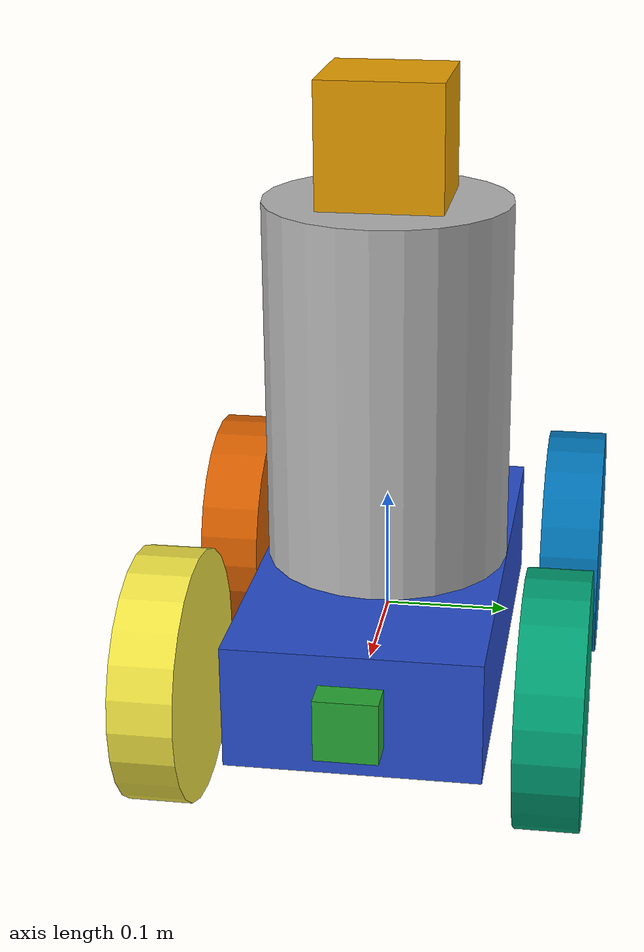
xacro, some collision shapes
<?xml version='1.0'?>

<robot name="udacity_bot" xmlns:xacro="http://www.ros.org/wiki/xacro">

  <xacro:include filename="$(find udacity_bot)/urdf/map_bot.gazebo" />

  <link name="robot_footprint"></link>

  <joint name="robot_footprint_joint" type="fixed">
    <origin xyz="0 0 0" rpy="0 0 0" />
    <parent link="robot_footprint"/>
    <child link="chassis" />
  </joint>

  <link name='chassis'>
    <pose>0 0 0.1 0 0 0</pose>

    <inertial>
      <mass value="15.0"/>
      <origin xyz="0.0 0 0" rpy="0 0 0"/>
      <inertia
          ixx="0.1" ixy="0" ixz="0"
          iyy="0.1" iyz="0"
          izz="0.1"
      />
    </inertial>

    <collision name='collision'>
      <origin xyz="0 0 0" rpy="0 0 0"/>
      <geometry>
        <box size=".4 .2 .1"/>
      </geometry>
    </collision>

    <visual name='chassis_visual'>
      <origin xyz="0 0 0" rpy="0 0 0"/>
      <geometry>
        <box size=".4 .2 .1"/>
      </geometry>
      <material name='blue'/>
    </visual>

    <collision name='back_caster_collision'>
      <origin xyz="-0.15 0 -0.05" rpy="0 0 0"/>
      <geometry>
        <sphere radius="0.0499"/>
      </geometry>
    </collision>

    <visual name='back_caster_visual'>
      <origin xyz="-0.15 0 -0.05" rpy="0 0 0"/>
      <geometry>
        <sphere radius="0.05"/>
      </geometry>
    </visual>

  </link>

  <joint type="continuous" name="front_left_wheel_hinge">
    <origin xyz="0.15 0.15 0" rpy="0 0 0"/>
    <child link="front_left_wheel"/>
    <parent link="chassis"/>
    <axis xyz="0 1 0" rpy="0 0 0"/>
    <limit effort="10000" velocity="1000"/>
    <dynamics damping="1.0" friction="1.0"/>
  </joint>

  <joint type="continuous" name="front_right_wheel_hinge">
    <origin xyz="0.15 -0.15 0" rpy="0 0 0"/>
    <child link="front_right_wheel"/>
    <parent link="chassis"/>
    <axis xyz="0 1 0" rpy="0 0 0"/>
    <limit effort="10000" velocity="1000"/>
    <dynamics damping="1.0" friction="1.0"/>
  </joint>

  <joint type="continuous" name="rear_left_wheel_hinge">
    <origin xyz="-0.15 0.15 0" rpy="0 0 0"/>
    <child link="rear_left_wheel"/>
    <parent link="chassis"/>
    <axis xyz="0 1 0" rpy="0 0 0"/>
    <limit effort="10000" velocity="1000"/>
    <dynamics damping="1.0" friction="1.0"/>
  </joint>

  <joint type="continuous" name="rear_right_wheel_hinge">
    <origin xyz="-0.15 -0.15 0" rpy="0 0 0"/>
    <child link="rear_right_wheel"/>
    <parent link="chassis"/>
    <axis xyz="0 1 0" rpy="0 0 0"/>
    <limit effort="10000" velocity="1000"/>
    <dynamics damping="1.0" friction="1.0"/>
  </joint>

  <link name="front_left_wheel">
    <visual>
      <origin xyz="0 0 0" rpy="0 1.5707 1.5707"/>
      <geometry>
        <cylinder radius="0.1" length="0.05"/>
      </geometry>
    </visual>

    <collision>
      <origin xyz="0 0 0" rpy="0 1.5707 1.5707"/>
      <geometry>
        <cylinder radius="0.1" length="0.05"/>
      </geometry>
    </collision>

    <inertial>
      <origin xyz="0 0 0" rpy="0 1.5707 1.5707"/>
      <mass value="5"/>
      <inertia
          ixx="0.1" ixy="0" ixz="0"
          iyy="0.1" iyz="0"
          izz="0.1"
      />
    </inertial>
  </link>

  <link name="front_right_wheel">
    <visual>
      <origin xyz="0 0 0" rpy="0 1.5707 1.5707"/>
      <geometry>
        <cylinder radius="0.1" length="0.05"/>
      </geometry>
    </visual>

    <collision>
      <origin xyz="0 0 0" rpy="0 1.5707 1.5707"/>
      <geometry>
        <cylinder radius="0.1" length="0.05"/>
      </geometry>
    </collision>

    <inertial>
      <origin xyz="0 0 0" rpy="0 1.5707 1.5707"/>
      <mass value="5"/>
      <inertia
          ixx="0.1" ixy="0" ixz="0"
          iyy="0.1" iyz="0"
          izz="0.1"
      />
    </inertial>
  </link>

  <link name="rear_left_wheel">
    <visual>
      <origin xyz="0 0 0" rpy="0 1.5707 1.5707"/>
      <geometry>
        <cylinder radius="0.1" length="0.05"/>
      </geometry>
    </visual>

    <collision>
      <origin xyz="0 0 0" rpy="0 1.5707 1.5707"/>
      <geometry>
        <cylinder radius="0.1" length="0.05"/>
      </geometry>
    </collision>

    <inertial>
      <origin xyz="0 0 0" rpy="0 1.5707 1.5707"/>
      <mass value="5"/>
      <inertia
          ixx="0.1" ixy="0" ixz="0"
          iyy="0.1" iyz="0"
          izz="0.1"
      />
    </inertial>
  </link>

  <link name="rear_right_wheel">
    <visual>
      <origin xyz="0 0 0" rpy="0 1.5707 1.5707"/>
      <geometry>
        <cylinder radius="0.1" length="0.05"/>
      </geometry>
    </visual>

    <collision>
      <origin xyz="0 0 0" rpy="0 1.5707 1.5707"/>
      <geometry>
        <cylinder radius="0.1" length="0.05"/>
      </geometry>
    </collision>

    <inertial>
      <origin xyz="0 0 0" rpy="0 1.5707 1.5707"/>
      <mass value="5"/>
      <inertia
          ixx="0.1" ixy="0" ixz="0"
          iyy="0.1" iyz="0"
          izz="0.1"
      />
    </inertial>
  </link>

  <joint type="fixed" name="camera_joint">
    <origin xyz="0.2 0 0" rpy="0 0 0"/>
    <parent link="chassis"/>
    <child link="camera"/>
  </joint>

  <link name="camera">
    <visual>
      <origin xyz="0 0 0" rpy="0 0 0"/>
      <geometry>
        <box size="0.05 0.05 0.05"/>
      </geometry>
    </visual>

    <collision>
      <origin xyz="0 0 0" rpy="0 0 0"/>
      <geometry>
        <box size="0.05 0.05 0.05"/>
      </geometry>
    </collision>

    <inertial>
      <mass value="0.1"/>
      <inertia
          ixx="1e-6" ixy="0" ixz="0"
          iyy="1e-6" iyz="0"
          izz="1e-6"
      />
    </inertial>
  </link>

  <joint type="fixed" name="body_joint">
    <origin xyz="0 0 0.2" rpy="0 0 0"/>
    <parent link="chassis"/>
    <child link="body"/>
  </joint>

  <link name="body">
    <visual>
      <origin xyz="0 0 0" rpy="0 0 0"/>
      <geometry>
        <cylinder radius="0.1" length="0.3"/>
      </geometry>
    </visual>

    <collision>
      <origin xyz="0 0 0" rpy="0 0 0"/>
      <geometry>
        <cylinder radius="0.1" length="0.3"/>
      </geometry>
    </collision>

    <inertial>
      <origin xyz="0 0 0" rpy="0 0 0"/>
      <mass value="5"/>
      <inertia
          ixx="0.1" ixy="0" ixz="0"
          iyy="0.1" iyz="0"
          izz="0.1"
      />
    </inertial>
  </link>

  <joint type="fixed" name="hokuyo_joint">
    <origin xyz="0 0 0.2" rpy="0 0 0"/>
    <parent link="body"/>
    <child link="hokuyo"/>
  </joint>

  <link name="hokuyo">
    <visual>
      <origin xyz="0 0 0" rpy="0 0 0"/>
      <geometry>
        <mesh filename="package://udacity_bot/meshes/hokuyo.dae"/>
      </geometry>
    </visual>

    <collision>
      <origin xyz="0 0 0" rpy="0 0 0"/>
      <geometry>
        <box size="0.1 0.1 0.1"/>
      </geometry>
    </collision>

    <inertial>
      <mass value="0.1"/>
      <inertia
          ixx="1e-6" ixy="0" ixz="0"
          iyy="1e-6" iyz="0"
          izz="1e-6"
      />
    </inertial>
  </link>

</robot>
